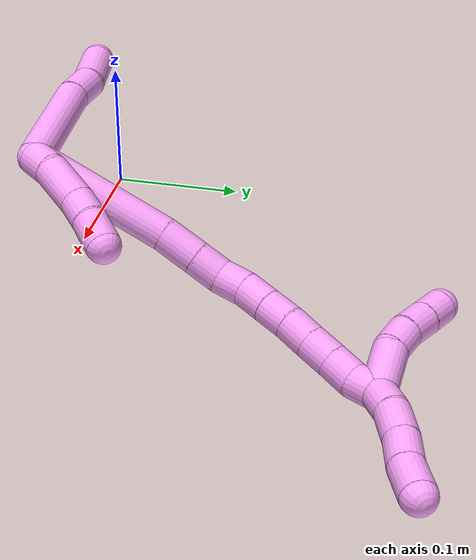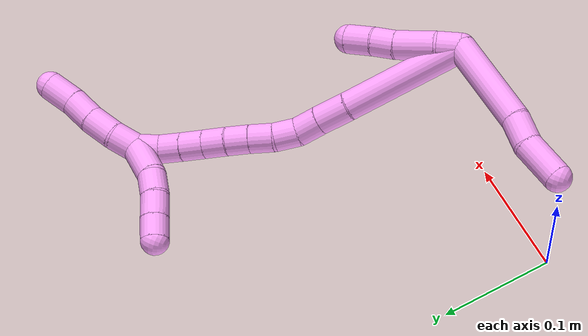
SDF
<sdf version="1.7">
 <world name="default">
  <model name="4">
   <static>0</static>
   <link name="4">
    <collision name="collision-cylinder-e_1_2_8">
     <pose>-0.013216 0.020631 -0.035228 -2.61181 -0.313083 1.05391</pose>
     <geometry><cylinder><radius>0.0125</radius><length>0.085821</length></cylinder></geometry>
     <surface>
      <friction><ode><mu>1.16</mu><mu2>1.16</mu2><slip1>0</slip1><slip2>0</slip2></ode></friction>
      <contact><ode><kp>1e+06</kp><kd>1</kd><max_vel>0</max_vel><min_depth>0.001</min_depth></ode></contact>
     </surface>
    </collision>
    <visual name="visual-cylinder-e_1_2_8">
     <pose>-0.013216 0.020631 -0.035228 -2.61181 -0.313083 1.05391</pose>
     <geometry><cylinder><radius>0.0125</radius><length>0.085821</length></cylinder></geometry>
     <material><ambient>1 0.65098 0.996078 1</ambient></material>
    </visual>
    <collision name="collision-cylinder-e_2_8_9">
     <pose>-0.03026 0.049473 -0.079806 -2.42095 -0.298439 0.759316</pose>
     <geometry><cylinder><radius>0.0125</radius><length>0.02604</length></cylinder></geometry>
     <surface>
      <friction><ode><mu>1.16</mu><mu2>1.16</mu2><slip1>0</slip1><slip2>0</slip2></ode></friction>
      <contact><ode><kp>1e+06</kp><kd>1</kd><max_vel>0</max_vel><min_depth>0.001</min_depth></ode></contact>
     </surface>
    </collision>
    <visual name="visual-cylinder-e_2_8_9">
     <pose>-0.03026 0.049473 -0.079806 -2.42095 -0.298439 0.759316</pose>
     <geometry><cylinder><radius>0.0125</radius><length>0.02604</length></cylinder></geometry>
     <material><ambient>1 0.65098 0.996078 1</ambient></material>
    </visual>
    <collision name="collision-cylinder-e_3_9_6">
     <pose>-0.038457 0.065595 -0.10595 -2.70136 -0.231107 0.957102</pose>
     <geometry><cylinder><radius>0.0125</radius><length>0.03814</length></cylinder></geometry>
     <surface>
      <friction><ode><mu>1.16</mu><mu2>1.16</mu2><slip1>0</slip1><slip2>0</slip2></ode></friction>
      <contact><ode><kp>1e+06</kp><kd>1</kd><max_vel>0</max_vel><min_depth>0.001</min_depth></ode></contact>
     </surface>
    </collision>
    <visual name="visual-cylinder-e_3_9_6">
     <pose>-0.038457 0.065595 -0.10595 -2.70136 -0.231107 0.957102</pose>
     <geometry><cylinder><radius>0.0125</radius><length>0.03814</length></cylinder></geometry>
     <material><ambient>1 0.65098 0.996078 1</ambient></material>
    </visual>
    <collision name="collision-cylinder-e_1_2_10">
     <pose>-0.00085 0.003111 0.009697 -0.310477 -0.083253 0.013036</pose>
     <geometry><cylinder><radius>0.0125</radius><length>0.020438</length></cylinder></geometry>
     <surface>
      <friction><ode><mu>1.16</mu><mu2>1.16</mu2><slip1>0</slip1><slip2>0</slip2></ode></friction>
      <contact><ode><kp>1e+06</kp><kd>1</kd><max_vel>0</max_vel><min_depth>0.001</min_depth></ode></contact>
     </surface>
    </collision>
    <visual name="visual-cylinder-e_1_2_10">
     <pose>-0.00085 0.003111 0.009697 -0.310477 -0.083253 0.013036</pose>
     <geometry><cylinder><radius>0.0125</radius><length>0.020438</length></cylinder></geometry>
     <material><ambient>1 0.65098 0.996078 1</ambient></material>
    </visual>
    <collision name="collision-cylinder-e_2_10_11">
     <pose>0.000419 0.012021 0.036071 -0.334604 0.119408 -0.020189</pose>
     <geometry><cylinder><radius>0.0125</radius><length>0.035568</length></cylinder></geometry>
     <surface>
      <friction><ode><mu>1.16</mu><mu2>1.16</mu2><slip1>0</slip1><slip2>0</slip2></ode></friction>
      <contact><ode><kp>1e+06</kp><kd>1</kd><max_vel>0</max_vel><min_depth>0.001</min_depth></ode></contact>
     </surface>
    </collision>
    <visual name="visual-cylinder-e_2_10_11">
     <pose>0.000419 0.012021 0.036071 -0.334604 0.119408 -0.020189</pose>
     <geometry><cylinder><radius>0.0125</radius><length>0.035568</length></cylinder></geometry>
     <material><ambient>1 0.65098 0.996078 1</ambient></material>
    </visual>
    <collision name="collision-cylinder-e_3_11_12">
     <pose>0.00392 0.019764 0.062464 -0.197562 0.138698 -0.013767</pose>
     <geometry><cylinder><radius>0.0125</radius><length>0.020006</length></cylinder></geometry>
     <surface>
      <friction><ode><mu>1.16</mu><mu2>1.16</mu2><slip1>0</slip1><slip2>0</slip2></ode></friction>
      <contact><ode><kp>1e+06</kp><kd>1</kd><max_vel>0</max_vel><min_depth>0.001</min_depth></ode></contact>
     </surface>
    </collision>
    <visual name="visual-cylinder-e_3_11_12">
     <pose>0.00392 0.019764 0.062464 -0.197562 0.138698 -0.013767</pose>
     <geometry><cylinder><radius>0.0125</radius><length>0.020006</length></cylinder></geometry>
     <material><ambient>1 0.65098 0.996078 1</ambient></material>
    </visual>
    <collision name="collision-cylinder-e_4_12_5">
     <pose>0.008308 0.024416 0.08347 -0.235287 0.253197 -0.030084</pose>
     <geometry><cylinder><radius>0.0125</radius><length>0.023988</length></cylinder></geometry>
     <surface>
      <friction><ode><mu>1.16</mu><mu2>1.16</mu2><slip1>0</slip1><slip2>0</slip2></ode></friction>
      <contact><ode><kp>1e+06</kp><kd>1</kd><max_vel>0</max_vel><min_depth>0.001</min_depth></ode></contact>
     </surface>
    </collision>
    <visual name="visual-cylinder-e_4_12_5">
     <pose>0.008308 0.024416 0.08347 -0.235287 0.253197 -0.030084</pose>
     <geometry><cylinder><radius>0.0125</radius><length>0.023988</length></cylinder></geometry>
     <material><ambient>1 0.65098 0.996078 1</ambient></material>
    </visual>
    <collision name="collision-cylinder-e_1_2_13">
     <pose>0.002223 0.040357 0.035598 -0.847977 0.041281 -0.018635</pose>
     <geometry><cylinder><radius>0.0125</radius><length>0.107719</length></cylinder></geometry>
     <surface>
      <friction><ode><mu>1.16</mu><mu2>1.16</mu2><slip1>0</slip1><slip2>0</slip2></ode></friction>
      <contact><ode><kp>1e+06</kp><kd>1</kd><max_vel>0</max_vel><min_depth>0.001</min_depth></ode></contact>
     </surface>
    </collision>
    <visual name="visual-cylinder-e_1_2_13">
     <pose>0.002223 0.040357 0.035598 -0.847977 0.041281 -0.018635</pose>
     <geometry><cylinder><radius>0.0125</radius><length>0.107719</length></cylinder></geometry>
     <material><ambient>1 0.65098 0.996078 1</ambient></material>
    </visual>
    <collision name="collision-cylinder-e_2_13_14">
     <pose>0.006291 0.090645 0.080641 -0.810397 0.13389 -0.0575</pose>
     <geometry><cylinder><radius>0.0125</radius><length>0.027657</length></cylinder></geometry>
     <surface>
      <friction><ode><mu>1.16</mu><mu2>1.16</mu2><slip1>0</slip1><slip2>0</slip2></ode></friction>
      <contact><ode><kp>1e+06</kp><kd>1</kd><max_vel>0</max_vel><min_depth>0.001</min_depth></ode></contact>
     </surface>
    </collision>
    <visual name="visual-cylinder-e_2_13_14">
     <pose>0.006291 0.090645 0.080641 -0.810397 0.13389 -0.0575</pose>
     <geometry><cylinder><radius>0.0125</radius><length>0.027657</length></cylinder></geometry>
     <material><ambient>1 0.65098 0.996078 1</ambient></material>
    </visual>
    <collision name="collision-cylinder-e_3_14_15">
     <pose>0.009793 0.108503 0.097218 -0.838281 0.154012 -0.068728</pose>
     <geometry><cylinder><radius>0.0125</radius><length>0.021583</length></cylinder></geometry>
     <surface>
      <friction><ode><mu>1.16</mu><mu2>1.16</mu2><slip1>0</slip1><slip2>0</slip2></ode></friction>
      <contact><ode><kp>1e+06</kp><kd>1</kd><max_vel>0</max_vel><min_depth>0.001</min_depth></ode></contact>
     </surface>
    </collision>
    <visual name="visual-cylinder-e_3_14_15">
     <pose>0.009793 0.108503 0.097218 -0.838281 0.154012 -0.068728</pose>
     <geometry><cylinder><radius>0.0125</radius><length>0.021583</length></cylinder></geometry>
     <material><ambient>1 0.65098 0.996078 1</ambient></material>
    </visual>
    <collision name="collision-cylinder-e_4_15_16">
     <pose>0.010317 0.122483 0.112819 -0.620378 -0.108266 0.034734</pose>
     <geometry><cylinder><radius>0.0125</radius><length>0.02094</length></cylinder></geometry>
     <surface>
      <friction><ode><mu>1.16</mu><mu2>1.16</mu2><slip1>0</slip1><slip2>0</slip2></ode></friction>
      <contact><ode><kp>1e+06</kp><kd>1</kd><max_vel>0</max_vel><min_depth>0.001</min_depth></ode></contact>
     </surface>
    </collision>
    <visual name="visual-cylinder-e_4_15_16">
     <pose>0.010317 0.122483 0.112819 -0.620378 -0.108266 0.034734</pose>
     <geometry><cylinder><radius>0.0125</radius><length>0.02094</length></cylinder></geometry>
     <material><ambient>1 0.65098 0.996078 1</ambient></material>
    </visual>
    <collision name="collision-cylinder-e_5_16_17">
     <pose>0.009096 0.133042 0.130791 -0.442979 -0.008511 0.001916</pose>
     <geometry><cylinder><radius>0.0125</radius><length>0.021037</length></cylinder></geometry>
     <surface>
      <friction><ode><mu>1.16</mu><mu2>1.16</mu2><slip1>0</slip1><slip2>0</slip2></ode></friction>
      <contact><ode><kp>1e+06</kp><kd>1</kd><max_vel>0</max_vel><min_depth>0.001</min_depth></ode></contact>
     </surface>
    </collision>
    <visual name="visual-cylinder-e_5_16_17">
     <pose>0.009096 0.133042 0.130791 -0.442979 -0.008511 0.001916</pose>
     <geometry><cylinder><radius>0.0125</radius><length>0.021037</length></cylinder></geometry>
     <material><ambient>1 0.65098 0.996078 1</ambient></material>
    </visual>
    <collision name="collision-cylinder-e_6_17_18">
     <pose>0.009059 0.142183 0.149253 -0.477259 0.005232 -0.001273</pose>
     <geometry><cylinder><radius>0.0125</radius><length>0.020173</length></cylinder></geometry>
     <surface>
      <friction><ode><mu>1.16</mu><mu2>1.16</mu2><slip1>0</slip1><slip2>0</slip2></ode></friction>
      <contact><ode><kp>1e+06</kp><kd>1</kd><max_vel>0</max_vel><min_depth>0.001</min_depth></ode></contact>
     </surface>
    </collision>
    <visual name="visual-cylinder-e_6_17_18">
     <pose>0.009059 0.142183 0.149253 -0.477259 0.005232 -0.001273</pose>
     <geometry><cylinder><radius>0.0125</radius><length>0.020173</length></cylinder></geometry>
     <material><ambient>1 0.65098 0.996078 1</ambient></material>
    </visual>
    <collision name="collision-cylinder-e_7_18_19">
     <pose>0.010083 0.151522 0.167101 -0.486858 0.096193 -0.023907</pose>
     <geometry><cylinder><radius>0.0125</radius><length>0.020209</length></cylinder></geometry>
     <surface>
      <friction><ode><mu>1.16</mu><mu2>1.16</mu2><slip1>0</slip1><slip2>0</slip2></ode></friction>
      <contact><ode><kp>1e+06</kp><kd>1</kd><max_vel>0</max_vel><min_depth>0.001</min_depth></ode></contact>
     </surface>
    </collision>
    <visual name="visual-cylinder-e_7_18_19">
     <pose>0.010083 0.151522 0.167101 -0.486858 0.096193 -0.023907</pose>
     <geometry><cylinder><radius>0.0125</radius><length>0.020209</length></cylinder></geometry>
     <material><ambient>1 0.65098 0.996078 1</ambient></material>
    </visual>
    <collision name="collision-cylinder-e_8_19_20">
     <pose>0.011744 0.160967 0.184933 -0.487352 0.068201 -0.016962</pose>
     <geometry><cylinder><radius>0.0125</radius><length>0.020288</length></cylinder></geometry>
     <surface>
      <friction><ode><mu>1.16</mu><mu2>1.16</mu2><slip1>0</slip1><slip2>0</slip2></ode></friction>
      <contact><ode><kp>1e+06</kp><kd>1</kd><max_vel>0</max_vel><min_depth>0.001</min_depth></ode></contact>
     </surface>
    </collision>
    <visual name="visual-cylinder-e_8_19_20">
     <pose>0.011744 0.160967 0.184933 -0.487352 0.068201 -0.016962</pose>
     <geometry><cylinder><radius>0.0125</radius><length>0.020288</length></cylinder></geometry>
     <material><ambient>1 0.65098 0.996078 1</ambient></material>
    </visual>
    <collision name="collision-cylinder-e_9_20_21">
     <pose>0.01331 0.170248 0.202908 -0.465908 0.086214 -0.020467</pose>
     <geometry><cylinder><radius>0.0125</radius><length>0.020297</length></cylinder></geometry>
     <surface>
      <friction><ode><mu>1.16</mu><mu2>1.16</mu2><slip1>0</slip1><slip2>0</slip2></ode></friction>
      <contact><ode><kp>1e+06</kp><kd>1</kd><max_vel>0</max_vel><min_depth>0.001</min_depth></ode></contact>
     </surface>
    </collision>
    <visual name="visual-cylinder-e_9_20_21">
     <pose>0.01331 0.170248 0.202908 -0.465908 0.086214 -0.020467</pose>
     <geometry><cylinder><radius>0.0125</radius><length>0.020297</length></cylinder></geometry>
     <material><ambient>1 0.65098 0.996078 1</ambient></material>
    </visual>
    <collision name="collision-cylinder-e_10_21_1">
     <pose>0.011942 0.178356 0.221064 -0.372535 -0.224907 0.042557</pose>
     <geometry><cylinder><radius>0.0125</radius><length>0.020097</length></cylinder></geometry>
     <surface>
      <friction><ode><mu>1.16</mu><mu2>1.16</mu2><slip1>0</slip1><slip2>0</slip2></ode></friction>
      <contact><ode><kp>1e+06</kp><kd>1</kd><max_vel>0</max_vel><min_depth>0.001</min_depth></ode></contact>
     </surface>
    </collision>
    <visual name="visual-cylinder-e_10_21_1">
     <pose>0.011942 0.178356 0.221064 -0.372535 -0.224907 0.042557</pose>
     <geometry><cylinder><radius>0.0125</radius><length>0.020097</length></cylinder></geometry>
     <material><ambient>1 0.65098 0.996078 1</ambient></material>
    </visual>
    <collision name="collision-cylinder-e_1_1_22">
     <pose>0.000494 0.190161 0.216538 -2.59846 -0.523687 1.53255</pose>
     <geometry><cylinder><radius>0.0125</radius><length>0.036823</length></cylinder></geometry>
     <surface>
      <friction><ode><mu>1.16</mu><mu2>1.16</mu2><slip1>0</slip1><slip2>0</slip2></ode></friction>
      <contact><ode><kp>1e+06</kp><kd>1</kd><max_vel>0</max_vel><min_depth>0.001</min_depth></ode></contact>
     </surface>
    </collision>
    <visual name="visual-cylinder-e_1_1_22">
     <pose>0.000494 0.190161 0.216538 -2.59846 -0.523687 1.53255</pose>
     <geometry><cylinder><radius>0.0125</radius><length>0.036823</length></cylinder></geometry>
     <material><ambient>1 0.65098 0.996078 1</ambient></material>
    </visual>
    <collision name="collision-cylinder-e_2_22_23">
     <pose>-0.013131 0.205856 0.196839 -2.25254 -0.431327 0.862149</pose>
     <geometry><cylinder><radius>0.0125</radius><length>0.021138</length></cylinder></geometry>
     <surface>
      <friction><ode><mu>1.16</mu><mu2>1.16</mu2><slip1>0</slip1><slip2>0</slip2></ode></friction>
      <contact><ode><kp>1e+06</kp><kd>1</kd><max_vel>0</max_vel><min_depth>0.001</min_depth></ode></contact>
     </surface>
    </collision>
    <visual name="visual-cylinder-e_2_22_23">
     <pose>-0.013131 0.205856 0.196839 -2.25254 -0.431327 0.862149</pose>
     <geometry><cylinder><radius>0.0125</radius><length>0.021138</length></cylinder></geometry>
     <material><ambient>1 0.65098 0.996078 1</ambient></material>
    </visual>
    <collision name="collision-cylinder-e_3_23_24">
     <pose>-0.021329 0.222195 0.185973 -2.06758 -0.357904 0.589921</pose>
     <geometry><cylinder><radius>0.0125</radius><length>0.021577</length></cylinder></geometry>
     <surface>
      <friction><ode><mu>1.16</mu><mu2>1.16</mu2><slip1>0</slip1><slip2>0</slip2></ode></friction>
      <contact><ode><kp>1e+06</kp><kd>1</kd><max_vel>0</max_vel><min_depth>0.001</min_depth></ode></contact>
     </surface>
    </collision>
    <visual name="visual-cylinder-e_3_23_24">
     <pose>-0.021329 0.222195 0.185973 -2.06758 -0.357904 0.589921</pose>
     <geometry><cylinder><radius>0.0125</radius><length>0.021577</length></cylinder></geometry>
     <material><ambient>1 0.65098 0.996078 1</ambient></material>
    </visual>
    <collision name="collision-cylinder-e_4_24_4">
     <pose>-0.028613 0.239442 0.176419 -2.08617 -0.349573 0.588372</pose>
     <geometry><cylinder><radius>0.0125</radius><length>0.020462</length></cylinder></geometry>
     <surface>
      <friction><ode><mu>1.16</mu><mu2>1.16</mu2><slip1>0</slip1><slip2>0</slip2></ode></friction>
      <contact><ode><kp>1e+06</kp><kd>1</kd><max_vel>0</max_vel><min_depth>0.001</min_depth></ode></contact>
     </surface>
    </collision>
    <visual name="visual-cylinder-e_4_24_4">
     <pose>-0.028613 0.239442 0.176419 -2.08617 -0.349573 0.588372</pose>
     <geometry><cylinder><radius>0.0125</radius><length>0.020462</length></cylinder></geometry>
     <material><ambient>1 0.65098 0.996078 1</ambient></material>
    </visual>
    <collision name="collision-cylinder-e_1_1_25">
     <pose>0.009064 0.180528 0.241557 0.12192 -0.055631 -0.003396</pose>
     <geometry><cylinder><radius>0.0125</radius><length>0.022944</length></cylinder></geometry>
     <surface>
      <friction><ode><mu>1.16</mu><mu2>1.16</mu2><slip1>0</slip1><slip2>0</slip2></ode></friction>
      <contact><ode><kp>1e+06</kp><kd>1</kd><max_vel>0</max_vel><min_depth>0.001</min_depth></ode></contact>
     </surface>
    </collision>
    <visual name="visual-cylinder-e_1_1_25">
     <pose>0.009064 0.180528 0.241557 0.12192 -0.055631 -0.003396</pose>
     <geometry><cylinder><radius>0.0125</radius><length>0.022944</length></cylinder></geometry>
     <material><ambient>1 0.65098 0.996078 1</ambient></material>
    </visual>
    <collision name="collision-cylinder-e_2_25_26">
     <pose>0.01018 0.176388 0.265548 0.214261 0.135003 0.01454</pose>
     <geometry><cylinder><radius>0.0125</radius><length>0.026071</length></cylinder></geometry>
     <surface>
      <friction><ode><mu>1.16</mu><mu2>1.16</mu2><slip1>0</slip1><slip2>0</slip2></ode></friction>
      <contact><ode><kp>1e+06</kp><kd>1</kd><max_vel>0</max_vel><min_depth>0.001</min_depth></ode></contact>
     </surface>
    </collision>
    <visual name="visual-cylinder-e_2_25_26">
     <pose>0.01018 0.176388 0.265548 0.214261 0.135003 0.01454</pose>
     <geometry><cylinder><radius>0.0125</radius><length>0.026071</length></cylinder></geometry>
     <material><ambient>1 0.65098 0.996078 1</ambient></material>
    </visual>
    <collision name="collision-cylinder-e_3_26_27">
     <pose>0.013928 0.169639 0.289533 0.338722 0.164 0.028105</pose>
     <geometry><cylinder><radius>0.0125</radius><length>0.024423</length></cylinder></geometry>
     <surface>
      <friction><ode><mu>1.16</mu><mu2>1.16</mu2><slip1>0</slip1><slip2>0</slip2></ode></friction>
      <contact><ode><kp>1e+06</kp><kd>1</kd><max_vel>0</max_vel><min_depth>0.001</min_depth></ode></contact>
     </surface>
    </collision>
    <visual name="visual-cylinder-e_3_26_27">
     <pose>0.013928 0.169639 0.289533 0.338722 0.164 0.028105</pose>
     <geometry><cylinder><radius>0.0125</radius><length>0.024423</length></cylinder></geometry>
     <material><ambient>1 0.65098 0.996078 1</ambient></material>
    </visual>
    <collision name="collision-cylinder-e_4_27_3">
     <pose>0.016798 0.162869 0.313856 0.210268 0.06601 0.006968</pose>
     <geometry><cylinder><radius>0.0125</radius><length>0.026561</length></cylinder></geometry>
     <surface>
      <friction><ode><mu>1.16</mu><mu2>1.16</mu2><slip1>0</slip1><slip2>0</slip2></ode></friction>
      <contact><ode><kp>1e+06</kp><kd>1</kd><max_vel>0</max_vel><min_depth>0.001</min_depth></ode></contact>
     </surface>
    </collision>
    <visual name="visual-cylinder-e_4_27_3">
     <pose>0.016798 0.162869 0.313856 0.210268 0.06601 0.006968</pose>
     <geometry><cylinder><radius>0.0125</radius><length>0.026561</length></cylinder></geometry>
     <material><ambient>1 0.65098 0.996078 1</ambient></material>
    </visual>
    <collision name="collision-sphere-3">
     <pose>0.017674 0.160104 0.326816 0 -0 0</pose>
     <geometry><sphere><radius>0.0125</radius></sphere></geometry>
     <surface>
      <friction><ode><mu>1.16</mu><mu2>1.16</mu2><slip1>0</slip1><slip2>0</slip2></ode></friction>
      <contact><ode><kp>1e+06</kp><kd>1</kd><max_vel>0</max_vel><min_depth>0.001</min_depth></ode></contact>
     </surface>
    </collision>
    <visual name="visual-sphere-3">
     <pose>0.017674 0.160104 0.326816 0 -0 0</pose>
     <geometry><sphere><radius>0.0125</radius></sphere></geometry>
     <material><ambient>1 0.65098 0.996078 1</ambient></material>
    </visual>
    <collision name="collision-sphere-27">
     <pose>0.015922 0.165635 0.300896 0 -0 0</pose>
     <geometry><sphere><radius>0.0125</radius></sphere></geometry>
     <surface>
      <friction><ode><mu>1.16</mu><mu2>1.16</mu2><slip1>0</slip1><slip2>0</slip2></ode></friction>
      <contact><ode><kp>1e+06</kp><kd>1</kd><max_vel>0</max_vel><min_depth>0.001</min_depth></ode></contact>
     </surface>
    </collision>
    <visual name="visual-sphere-27">
     <pose>0.015922 0.165635 0.300896 0 -0 0</pose>
     <geometry><sphere><radius>0.0125</radius></sphere></geometry>
     <material><ambient>1 0.65098 0.996078 1</ambient></material>
    </visual>
    <collision name="collision-sphere-26">
     <pose>0.011935 0.173642 0.27817 0 -0 0</pose>
     <geometry><sphere><radius>0.0125</radius></sphere></geometry>
     <surface>
      <friction><ode><mu>1.16</mu><mu2>1.16</mu2><slip1>0</slip1><slip2>0</slip2></ode></friction>
      <contact><ode><kp>1e+06</kp><kd>1</kd><max_vel>0</max_vel><min_depth>0.001</min_depth></ode></contact>
     </surface>
    </collision>
    <visual name="visual-sphere-26">
     <pose>0.011935 0.173642 0.27817 0 -0 0</pose>
     <geometry><sphere><radius>0.0125</radius></sphere></geometry>
     <material><ambient>1 0.65098 0.996078 1</ambient></material>
    </visual>
    <collision name="collision-sphere-25">
     <pose>0.008426 0.179135 0.252926 0 -0 0</pose>
     <geometry><sphere><radius>0.0125</radius></sphere></geometry>
     <surface>
      <friction><ode><mu>1.16</mu><mu2>1.16</mu2><slip1>0</slip1><slip2>0</slip2></ode></friction>
      <contact><ode><kp>1e+06</kp><kd>1</kd><max_vel>0</max_vel><min_depth>0.001</min_depth></ode></contact>
     </surface>
    </collision>
    <visual name="visual-sphere-25">
     <pose>0.008426 0.179135 0.252926 0 -0 0</pose>
     <geometry><sphere><radius>0.0125</radius></sphere></geometry>
     <material><ambient>1 0.65098 0.996078 1</ambient></material>
    </visual>
    <collision name="collision-sphere-4">
     <pose>-0.032117 0.247806 0.171681 0 -0 0</pose>
     <geometry><sphere><radius>0.0125</radius></sphere></geometry>
     <surface>
      <friction><ode><mu>1.16</mu><mu2>1.16</mu2><slip1>0</slip1><slip2>0</slip2></ode></friction>
      <contact><ode><kp>1e+06</kp><kd>1</kd><max_vel>0</max_vel><min_depth>0.001</min_depth></ode></contact>
     </surface>
    </collision>
    <visual name="visual-sphere-4">
     <pose>-0.032117 0.247806 0.171681 0 -0 0</pose>
     <geometry><sphere><radius>0.0125</radius></sphere></geometry>
     <material><ambient>1 0.65098 0.996078 1</ambient></material>
    </visual>
    <collision name="collision-sphere-24">
     <pose>-0.025109 0.231078 0.181157 0 -0 0</pose>
     <geometry><sphere><radius>0.0125</radius></sphere></geometry>
     <surface>
      <friction><ode><mu>1.16</mu><mu2>1.16</mu2><slip1>0</slip1><slip2>0</slip2></ode></friction>
      <contact><ode><kp>1e+06</kp><kd>1</kd><max_vel>0</max_vel><min_depth>0.001</min_depth></ode></contact>
     </surface>
    </collision>
    <visual name="visual-sphere-24">
     <pose>-0.025109 0.231078 0.181157 0 -0 0</pose>
     <geometry><sphere><radius>0.0125</radius></sphere></geometry>
     <material><ambient>1 0.65098 0.996078 1</ambient></material>
    </visual>
    <collision name="collision-sphere-23">
     <pose>-0.01755 0.213311 0.190788 0 -0 0</pose>
     <geometry><sphere><radius>0.0125</radius></sphere></geometry>
     <surface>
      <friction><ode><mu>1.16</mu><mu2>1.16</mu2><slip1>0</slip1><slip2>0</slip2></ode></friction>
      <contact><ode><kp>1e+06</kp><kd>1</kd><max_vel>0</max_vel><min_depth>0.001</min_depth></ode></contact>
     </surface>
    </collision>
    <visual name="visual-sphere-23">
     <pose>-0.01755 0.213311 0.190788 0 -0 0</pose>
     <geometry><sphere><radius>0.0125</radius></sphere></geometry>
     <material><ambient>1 0.65098 0.996078 1</ambient></material>
    </visual>
    <collision name="collision-sphere-22">
     <pose>-0.008713 0.198401 0.202889 0 -0 0</pose>
     <geometry><sphere><radius>0.0125</radius></sphere></geometry>
     <surface>
      <friction><ode><mu>1.16</mu><mu2>1.16</mu2><slip1>0</slip1><slip2>0</slip2></ode></friction>
      <contact><ode><kp>1e+06</kp><kd>1</kd><max_vel>0</max_vel><min_depth>0.001</min_depth></ode></contact>
     </surface>
    </collision>
    <visual name="visual-sphere-22">
     <pose>-0.008713 0.198401 0.202889 0 -0 0</pose>
     <geometry><sphere><radius>0.0125</radius></sphere></geometry>
     <material><ambient>1 0.65098 0.996078 1</ambient></material>
    </visual>
    <collision name="collision-sphere-1">
     <pose>0.009701 0.181921 0.230188 0 -0 0</pose>
     <geometry><sphere><radius>0.0125</radius></sphere></geometry>
     <surface>
      <friction><ode><mu>1.16</mu><mu2>1.16</mu2><slip1>0</slip1><slip2>0</slip2></ode></friction>
      <contact><ode><kp>1e+06</kp><kd>1</kd><max_vel>0</max_vel><min_depth>0.001</min_depth></ode></contact>
     </surface>
    </collision>
    <visual name="visual-sphere-1">
     <pose>0.009701 0.181921 0.230188 0 -0 0</pose>
     <geometry><sphere><radius>0.0125</radius></sphere></geometry>
     <material><ambient>1 0.65098 0.996078 1</ambient></material>
    </visual>
    <collision name="collision-sphere-21">
     <pose>0.014183 0.17479 0.211941 0 -0 0</pose>
     <geometry><sphere><radius>0.0125</radius></sphere></geometry>
     <surface>
      <friction><ode><mu>1.16</mu><mu2>1.16</mu2><slip1>0</slip1><slip2>0</slip2></ode></friction>
      <contact><ode><kp>1e+06</kp><kd>1</kd><max_vel>0</max_vel><min_depth>0.001</min_depth></ode></contact>
     </surface>
    </collision>
    <visual name="visual-sphere-21">
     <pose>0.014183 0.17479 0.211941 0 -0 0</pose>
     <geometry><sphere><radius>0.0125</radius></sphere></geometry>
     <material><ambient>1 0.65098 0.996078 1</ambient></material>
    </visual>
    <collision name="collision-sphere-11">
     <pose>0.002537 0.01782 0.052749 0 -0 0</pose>
     <geometry><sphere><radius>0.0125</radius></sphere></geometry>
     <surface>
      <friction><ode><mu>1.16</mu><mu2>1.16</mu2><slip1>0</slip1><slip2>0</slip2></ode></friction>
      <contact><ode><kp>1e+06</kp><kd>1</kd><max_vel>0</max_vel><min_depth>0.001</min_depth></ode></contact>
     </surface>
    </collision>
    <visual name="visual-sphere-11">
     <pose>0.002537 0.01782 0.052749 0 -0 0</pose>
     <geometry><sphere><radius>0.0125</radius></sphere></geometry>
     <material><ambient>1 0.65098 0.996078 1</ambient></material>
    </visual>
    <collision name="collision-sphere-10">
     <pose>-0.0017 0.006222 0.019393 0 -0 0</pose>
     <geometry><sphere><radius>0.0125</radius></sphere></geometry>
     <surface>
      <friction><ode><mu>1.16</mu><mu2>1.16</mu2><slip1>0</slip1><slip2>0</slip2></ode></friction>
      <contact><ode><kp>1e+06</kp><kd>1</kd><max_vel>0</max_vel><min_depth>0.001</min_depth></ode></contact>
     </surface>
    </collision>
    <visual name="visual-sphere-10">
     <pose>-0.0017 0.006222 0.019393 0 -0 0</pose>
     <geometry><sphere><radius>0.0125</radius></sphere></geometry>
     <material><ambient>1 0.65098 0.996078 1</ambient></material>
    </visual>
    <collision name="collision-sphere-6">
     <pose>-0.042825 0.073506 -0.122743 0 -0 0</pose>
     <geometry><sphere><radius>0.0125</radius></sphere></geometry>
     <surface>
      <friction><ode><mu>1.16</mu><mu2>1.16</mu2><slip1>0</slip1><slip2>0</slip2></ode></friction>
      <contact><ode><kp>1e+06</kp><kd>1</kd><max_vel>0</max_vel><min_depth>0.001</min_depth></ode></contact>
     </surface>
    </collision>
    <visual name="visual-sphere-6">
     <pose>-0.042825 0.073506 -0.122743 0 -0 0</pose>
     <geometry><sphere><radius>0.0125</radius></sphere></geometry>
     <material><ambient>1 0.65098 0.996078 1</ambient></material>
    </visual>
    <collision name="collision-sphere-9">
     <pose>-0.034089 0.057684 -0.089157 0 -0 0</pose>
     <geometry><sphere><radius>0.0125</radius></sphere></geometry>
     <surface>
      <friction><ode><mu>1.16</mu><mu2>1.16</mu2><slip1>0</slip1><slip2>0</slip2></ode></friction>
      <contact><ode><kp>1e+06</kp><kd>1</kd><max_vel>0</max_vel><min_depth>0.001</min_depth></ode></contact>
     </surface>
    </collision>
    <visual name="visual-sphere-9">
     <pose>-0.034089 0.057684 -0.089157 0 -0 0</pose>
     <geometry><sphere><radius>0.0125</radius></sphere></geometry>
     <material><ambient>1 0.65098 0.996078 1</ambient></material>
    </visual>
    <collision name="collision-sphere-2">
     <geometry><sphere><radius>0.0125</radius></sphere></geometry>
     <surface>
      <friction><ode><mu>1.16</mu><mu2>1.16</mu2><slip1>0</slip1><slip2>0</slip2></ode></friction>
      <contact><ode><kp>1e+06</kp><kd>1</kd><max_vel>0</max_vel><min_depth>0.001</min_depth></ode></contact>
     </surface>
    </collision>
    <visual name="visual-sphere-2">
     <geometry><sphere><radius>0.0125</radius></sphere></geometry>
     <material><ambient>1 0.65098 0.996078 1</ambient></material>
    </visual>
    <collision name="collision-sphere-19">
     <pose>0.011053 0.156228 0.175991 0 -0 0</pose>
     <geometry><sphere><radius>0.0125</radius></sphere></geometry>
     <surface>
      <friction><ode><mu>1.16</mu><mu2>1.16</mu2><slip1>0</slip1><slip2>0</slip2></ode></friction>
      <contact><ode><kp>1e+06</kp><kd>1</kd><max_vel>0</max_vel><min_depth>0.001</min_depth></ode></contact>
     </surface>
    </collision>
    <visual name="visual-sphere-19">
     <pose>0.011053 0.156228 0.175991 0 -0 0</pose>
     <geometry><sphere><radius>0.0125</radius></sphere></geometry>
     <material><ambient>1 0.65098 0.996078 1</ambient></material>
    </visual>
    <collision name="collision-sphere-8">
     <pose>-0.026432 0.041261 -0.070456 0 -0 0</pose>
     <geometry><sphere><radius>0.0125</radius></sphere></geometry>
     <surface>
      <friction><ode><mu>1.16</mu><mu2>1.16</mu2><slip1>0</slip1><slip2>0</slip2></ode></friction>
      <contact><ode><kp>1e+06</kp><kd>1</kd><max_vel>0</max_vel><min_depth>0.001</min_depth></ode></contact>
     </surface>
    </collision>
    <visual name="visual-sphere-8">
     <pose>-0.026432 0.041261 -0.070456 0 -0 0</pose>
     <geometry><sphere><radius>0.0125</radius></sphere></geometry>
     <material><ambient>1 0.65098 0.996078 1</ambient></material>
    </visual>
    <collision name="collision-sphere-12">
     <pose>0.005303 0.021709 0.072178 0 -0 0</pose>
     <geometry><sphere><radius>0.0125</radius></sphere></geometry>
     <surface>
      <friction><ode><mu>1.16</mu><mu2>1.16</mu2><slip1>0</slip1><slip2>0</slip2></ode></friction>
      <contact><ode><kp>1e+06</kp><kd>1</kd><max_vel>0</max_vel><min_depth>0.001</min_depth></ode></contact>
     </surface>
    </collision>
    <visual name="visual-sphere-12">
     <pose>0.005303 0.021709 0.072178 0 -0 0</pose>
     <geometry><sphere><radius>0.0125</radius></sphere></geometry>
     <material><ambient>1 0.65098 0.996078 1</ambient></material>
    </visual>
    <collision name="collision-sphere-5">
     <pose>0.011312 0.027122 0.094761 0 -0 0</pose>
     <geometry><sphere><radius>0.0125</radius></sphere></geometry>
     <surface>
      <friction><ode><mu>1.16</mu><mu2>1.16</mu2><slip1>0</slip1><slip2>0</slip2></ode></friction>
      <contact><ode><kp>1e+06</kp><kd>1</kd><max_vel>0</max_vel><min_depth>0.001</min_depth></ode></contact>
     </surface>
    </collision>
    <visual name="visual-sphere-5">
     <pose>0.011312 0.027122 0.094761 0 -0 0</pose>
     <geometry><sphere><radius>0.0125</radius></sphere></geometry>
     <material><ambient>1 0.65098 0.996078 1</ambient></material>
    </visual>
    <collision name="collision-sphere-13">
     <pose>0.004445 0.080715 0.071196 0 -0 0</pose>
     <geometry><sphere><radius>0.0125</radius></sphere></geometry>
     <surface>
      <friction><ode><mu>1.16</mu><mu2>1.16</mu2><slip1>0</slip1><slip2>0</slip2></ode></friction>
      <contact><ode><kp>1e+06</kp><kd>1</kd><max_vel>0</max_vel><min_depth>0.001</min_depth></ode></contact>
     </surface>
    </collision>
    <visual name="visual-sphere-13">
     <pose>0.004445 0.080715 0.071196 0 -0 0</pose>
     <geometry><sphere><radius>0.0125</radius></sphere></geometry>
     <material><ambient>1 0.65098 0.996078 1</ambient></material>
    </visual>
    <collision name="collision-sphere-14">
     <pose>0.008137 0.100574 0.090087 0 -0 0</pose>
     <geometry><sphere><radius>0.0125</radius></sphere></geometry>
     <surface>
      <friction><ode><mu>1.16</mu><mu2>1.16</mu2><slip1>0</slip1><slip2>0</slip2></ode></friction>
      <contact><ode><kp>1e+06</kp><kd>1</kd><max_vel>0</max_vel><min_depth>0.001</min_depth></ode></contact>
     </surface>
    </collision>
    <visual name="visual-sphere-14">
     <pose>0.008137 0.100574 0.090087 0 -0 0</pose>
     <geometry><sphere><radius>0.0125</radius></sphere></geometry>
     <material><ambient>1 0.65098 0.996078 1</ambient></material>
    </visual>
    <collision name="collision-sphere-15">
     <pose>0.011448 0.116431 0.104349 0 -0 0</pose>
     <geometry><sphere><radius>0.0125</radius></sphere></geometry>
     <surface>
      <friction><ode><mu>1.16</mu><mu2>1.16</mu2><slip1>0</slip1><slip2>0</slip2></ode></friction>
      <contact><ode><kp>1e+06</kp><kd>1</kd><max_vel>0</max_vel><min_depth>0.001</min_depth></ode></contact>
     </surface>
    </collision>
    <visual name="visual-sphere-15">
     <pose>0.011448 0.116431 0.104349 0 -0 0</pose>
     <geometry><sphere><radius>0.0125</radius></sphere></geometry>
     <material><ambient>1 0.65098 0.996078 1</ambient></material>
    </visual>
    <collision name="collision-sphere-16">
     <pose>0.009186 0.128534 0.121288 0 -0 0</pose>
     <geometry><sphere><radius>0.0125</radius></sphere></geometry>
     <surface>
      <friction><ode><mu>1.16</mu><mu2>1.16</mu2><slip1>0</slip1><slip2>0</slip2></ode></friction>
      <contact><ode><kp>1e+06</kp><kd>1</kd><max_vel>0</max_vel><min_depth>0.001</min_depth></ode></contact>
     </surface>
    </collision>
    <visual name="visual-sphere-16">
     <pose>0.009186 0.128534 0.121288 0 -0 0</pose>
     <geometry><sphere><radius>0.0125</radius></sphere></geometry>
     <material><ambient>1 0.65098 0.996078 1</ambient></material>
    </visual>
    <collision name="collision-sphere-17">
     <pose>0.009007 0.13755 0.140293 0 -0 0</pose>
     <geometry><sphere><radius>0.0125</radius></sphere></geometry>
     <surface>
      <friction><ode><mu>1.16</mu><mu2>1.16</mu2><slip1>0</slip1><slip2>0</slip2></ode></friction>
      <contact><ode><kp>1e+06</kp><kd>1</kd><max_vel>0</max_vel><min_depth>0.001</min_depth></ode></contact>
     </surface>
    </collision>
    <visual name="visual-sphere-17">
     <pose>0.009007 0.13755 0.140293 0 -0 0</pose>
     <geometry><sphere><radius>0.0125</radius></sphere></geometry>
     <material><ambient>1 0.65098 0.996078 1</ambient></material>
    </visual>
    <collision name="collision-sphere-18">
     <pose>0.009112 0.146817 0.158212 0 -0 0</pose>
     <geometry><sphere><radius>0.0125</radius></sphere></geometry>
     <surface>
      <friction><ode><mu>1.16</mu><mu2>1.16</mu2><slip1>0</slip1><slip2>0</slip2></ode></friction>
      <contact><ode><kp>1e+06</kp><kd>1</kd><max_vel>0</max_vel><min_depth>0.001</min_depth></ode></contact>
     </surface>
    </collision>
    <visual name="visual-sphere-18">
     <pose>0.009112 0.146817 0.158212 0 -0 0</pose>
     <geometry><sphere><radius>0.0125</radius></sphere></geometry>
     <material><ambient>1 0.65098 0.996078 1</ambient></material>
    </visual>
    <collision name="collision-sphere-20">
     <pose>0.012436 0.165706 0.193875 0 -0 0</pose>
     <geometry><sphere><radius>0.0125</radius></sphere></geometry>
     <surface>
      <friction><ode><mu>1.16</mu><mu2>1.16</mu2><slip1>0</slip1><slip2>0</slip2></ode></friction>
      <contact><ode><kp>1e+06</kp><kd>1</kd><max_vel>0</max_vel><min_depth>0.001</min_depth></ode></contact>
     </surface>
    </collision>
    <visual name="visual-sphere-20">
     <pose>0.012436 0.165706 0.193875 0 -0 0</pose>
     <geometry><sphere><radius>0.0125</radius></sphere></geometry>
     <material><ambient>1 0.65098 0.996078 1</ambient></material>
    </visual>
    <inertial>
     <pose>-0.001323 0.101448 0.100265 0 -0 0</pose>
     <mass>0.75</mass>
     <inertia>
      <ixx>0.000231</ixx>
      <ixy>0</ixy>
      <ixz>0</ixz>
      <iyy>0.000167</iyy>
      <iyz>0</iyz>
      <izz>-9.2e-05</izz>
     </inertia>
    </inertial>
   </link>
   <pose>0.165588 -0.008792 0.105225 -1.636 1.12894 -1.02508</pose>
  </model>
 </world>
</sdf>
